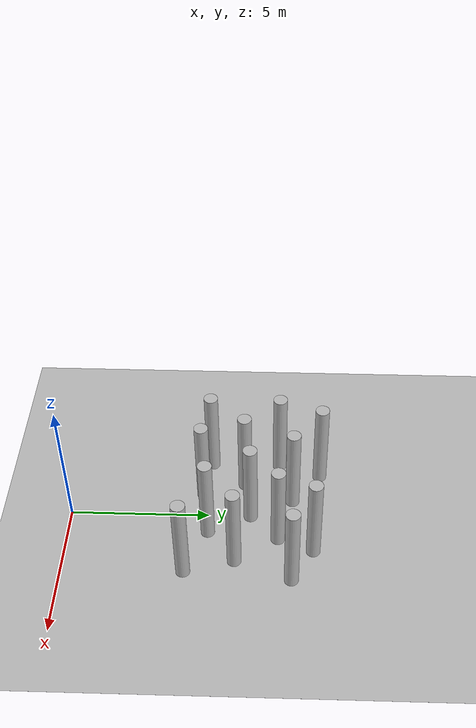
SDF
<sdf version="1.4">
 <world name="default">
  <include><uri>model://scale_plane30</uri></include>
  <include><uri>model://sun</uri></include>
  <include>
   <name>cylinder_obstacle0</name>
   <pose>-2.5 5 0 0 0 0</pose>
   <uri>model://cylinder_obstacle</uri>
  </include>
  <include>
   <name>cylinder_obstacle1</name>
   <pose>-2.5 7.5 0 0 0 0</pose>
   <uri>model://cylinder_obstacle</uri>
  </include>
  <include>
   <name>cylinder_obstacle2</name>
   <pose>-2 9 0 0 0 0</pose>
   <uri>model://cylinder_obstacle</uri>
  </include>
  <include>
   <name>cylinder_obstacle3</name>
   <pose>-1.5 6.25 0 0 0 0</pose>
   <uri>model://cylinder_obstacle</uri>
  </include>
  <include>
   <name>cylinder_obstacle4</name>
   <pose>-1 4.75 0 0 0 0</pose>
   <uri>model://cylinder_obstacle</uri>
  </include>
  <include>
   <name>cylinder_obstacle5</name>
   <pose>-0.75 8 0 0 0 0</pose>
   <uri>model://cylinder_obstacle</uri>
  </include>
  <include>
   <name>cylinder_obstacle6</name>
   <pose>0 6.5 0 0 0 0</pose>
   <uri>model://cylinder_obstacle</uri>
  </include>
  <include>
   <name>cylinder_obstacle7</name>
   <pose>0.75 5 0 0 0 0</pose>
   <uri>model://cylinder_obstacle</uri>
  </include>
  <include>
   <name>cylinder_obstacle8</name>
   <pose>1 7.5 0 0 0 0</pose>
   <uri>model://cylinder_obstacle</uri>
  </include>
  <include>
   <name>cylinder_obstacle9</name>
   <pose>1.5 8.75 0 0 0 0</pose>
   <uri>model://cylinder_obstacle</uri>
  </include>
  <include>
   <name>cylinder_obstacle10</name>
   <pose>2 6 0 0 0 0</pose>
   <uri>model://cylinder_obstacle</uri>
  </include>
  <include>
   <name>cylinder_obstacle11</name>
   <pose>2.5 4.25 0 0 0 0</pose>
   <uri>model://cylinder_obstacle</uri>
  </include>
  <include>
   <name>cylinder_obstacle12</name>
   <pose>2.75 8 0 0 0 0</pose>
   <uri>model://cylinder_obstacle</uri>
  </include>
  <model name="camera1">
   <pose>-5.5 14 4.5 0 0.43 -0.82</pose>
   <link name="link">
    <gravity>0</gravity>
    <inertial><mass>0.1</mass></inertial>
    <collision name="collision"><geometry><box><size>0.001 0.001 0.001</size></box></geometry></collision>
    <visual name="visual"><geometry><box><size>0.001 0.001 0.001</size></box></geometry></visual>
    <sensor name="camera1" type="camera">
     <camera>
      <horizontal_fov>1.35</horizontal_fov>
      <image><width>1720</width><height>1080</height></image>
      <clip><near>0.1</near><far>100</far></clip>
      <save enabled="true"><path>/tmp/cam1</path></save>
     </camera>
     <always_on>1</always_on>
     <update_rate>15</update_rate>
     <visualize>true</visualize>
    </sensor>
   </link>
  </model>
  <model name="camera2">
   <pose>0 6.25 15 0 1.570796 3.141592</pose>
   <link name="link">
    <gravity>0</gravity>
    <inertial><mass>0.1</mass></inertial>
    <collision name="collision"><geometry><box><size>0.001 0.001 0.001</size></box></geometry></collision>
    <visual name="visual"><geometry><box><size>0.001 0.001 0.001</size></box></geometry></visual>
    <sensor name="camera2" type="camera">
     <camera>
      <horizontal_fov>0.8</horizontal_fov>
      <image><width>1720</width><height>1080</height></image>
      <clip><near>0.1</near><far>100</far></clip>
      <save enabled="true"><path>/tmp/cam2</path></save>
     </camera>
     <always_on>1</always_on>
     <update_rate>15</update_rate>
     <visualize>true</visualize>
    </sensor>
   </link>
  </model>
  <model name="camera3">
   <pose>0 -0.3 0.3 0 -0.15 1.570796</pose>
   <link name="link">
    <gravity>0</gravity>
    <inertial><mass>0.1</mass></inertial>
    <collision name="collision"><geometry><box><size>0.001 0.001 0.001</size></box></geometry></collision>
    <visual name="visual"><geometry><box><size>0.001 0.001 0.001</size></box></geometry></visual>
    <sensor name="camera3" type="camera">
     <camera>
      <horizontal_fov>1.047</horizontal_fov>
      <image><width>1720</width><height>1080</height></image>
      <clip><near>0.1</near><far>100</far></clip>
      <save enabled="true"><path>/tmp/cam3</path></save>
     </camera>
     <always_on>1</always_on>
     <update_rate>15</update_rate>
     <visualize>true</visualize>
    </sensor>
   </link>
  </model>
  <model name="camera4">
   <pose>-5.5 10 15 0 1.050000 -0.6</pose>
   <link name="link">
    <gravity>0</gravity>
    <inertial><mass>0.1</mass></inertial>
    <collision name="collision"><geometry><box><size>0.001 0.001 0.001</size></box></geometry></collision>
    <visual name="visual"><geometry><box><size>0.001 0.001 0.001</size></box></geometry></visual>
    <sensor name="camera4" type="camera">
     <camera>
      <horizontal_fov>1.15</horizontal_fov>
      <image><width>1720</width><height>1080</height></image>
      <clip><near>0.1</near><far>100</far></clip>
      <save enabled="true"><path>/tmp/cam4</path></save>
     </camera>
     <always_on>1</always_on>
     <update_rate>15</update_rate>
     <visualize>true</visualize>
    </sensor>
   </link>
  </model>
  <plugin name="ros_interface_plugin" filename="librotors_gazebo_ros_interface_plugin.so"/>
  <spherical_coordinates>
   <surface_model>EARTH_WGS84</surface_model>
   <latitude_deg>47.3667</latitude_deg>
   <longitude_deg>8.5500</longitude_deg>
   <elevation>500.0</elevation>
   <heading_deg>0</heading_deg>
  </spherical_coordinates>
  <physics name="default_physics" default="0" type="ode">
   <ode>
    <solver><type>quick</type><iters>1000</iters><sor>1.3</sor></solver>
    <constraints>
     <cfm>0</cfm>
     <erp>0.2</erp>
     <contact_max_correcting_vel>100</contact_max_correcting_vel>
     <contact_surface_layer>0.001</contact_surface_layer>
    </constraints>
   </ode>
   <max_step_size>0.001</max_step_size>
   <real_time_factor>1</real_time_factor>
   <real_time_update_rate>1000</real_time_update_rate>
   <magnetic_field>6.0e-06 2.3e-05 -4.2e-05</magnetic_field>
   <gravity>0 0 -9.8</gravity>
  </physics>
  <scene><shadows>false</shadows></scene>
 </world>
</sdf>

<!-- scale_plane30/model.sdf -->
<sdf version="1.5">
  <model name="scale_plane30">
    <static>true</static>
    <link name="link">
      <collision name="collision">
        <geometry>
          <box>
            <size>60 60 .001</size>
          </box>
        </geometry>
      </collision>
      <visual name="visual">
        <cast_shadows>false</cast_shadows>
        <geometry>
          <box>
            <size>60 60 .001</size>
          </box>
        </geometry>
        <material>
          <script>
            <uri>model://scale_plane30/materials/scripts</uri>
            <uri>model://scale_plane30/materials/textures</uri>
            <name>vrc/scale</name>
          </script>
        </material>
      </visual>
    </link>
  </model>
</sdf>

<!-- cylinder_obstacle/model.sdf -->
<sdf version="1.5">
  <model name="cylinder_obstacle">
    <static>true</static>
    <link name="link">
      <collision name="collision">
        <geometry>
          <cylinder>
            <radius>0.25</radius>
            <length>7</length>
          </cylinder>
        </geometry>
      </collision>
      <visual name="visual">
        <cast_shadows>false</cast_shadows>
        <geometry>
          <cylinder>
            <radius>0.25</radius>
            <length>7</length>
          </cylinder>
        </geometry>
        <material>
          <script>
            <uri>model://cylinder_obstacle/materials/scripts</uri>
            <uri>model://cylinder_obstacle/materials/textures</uri>
            <name>vrc/obstacle</name>
          </script>
        </material>
      </visual>
    </link>
  </model>
</sdf>
